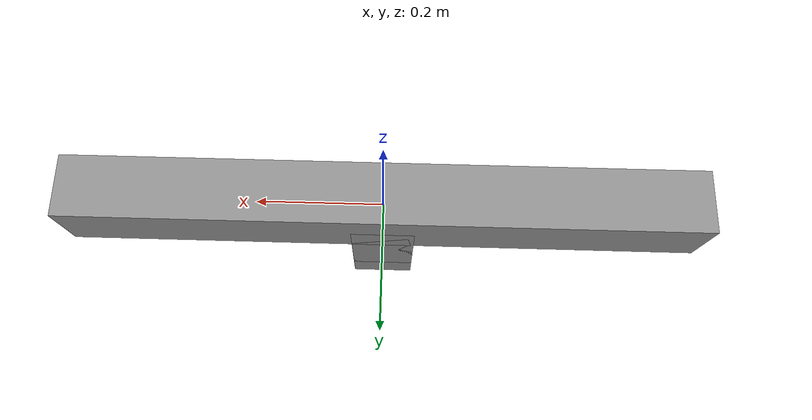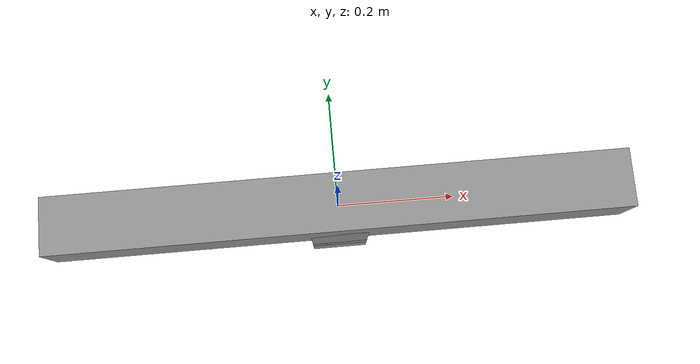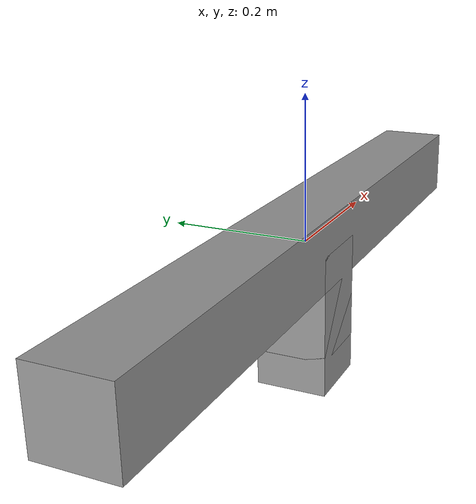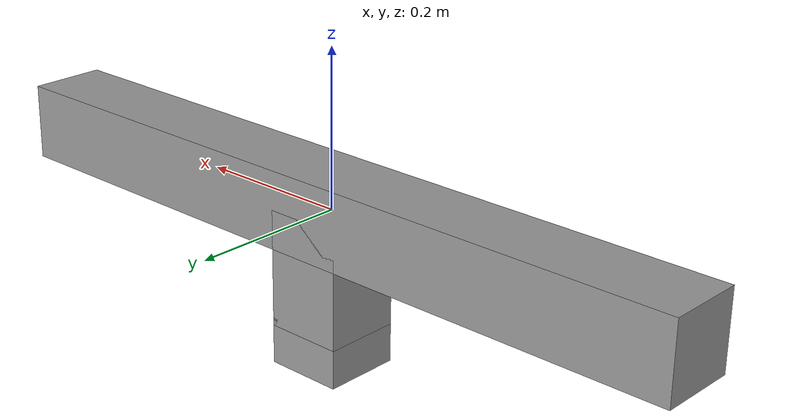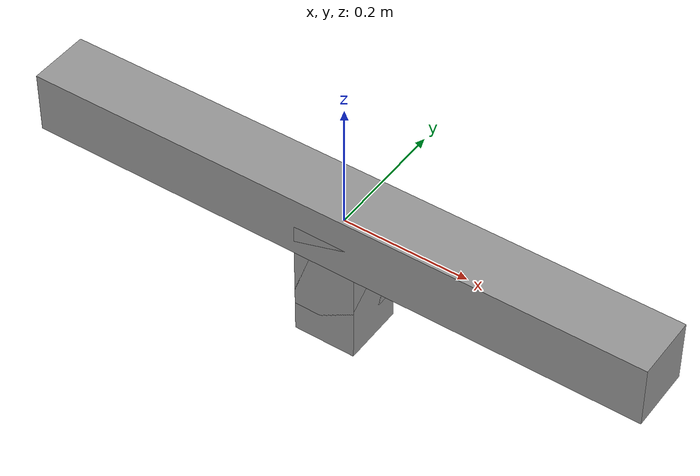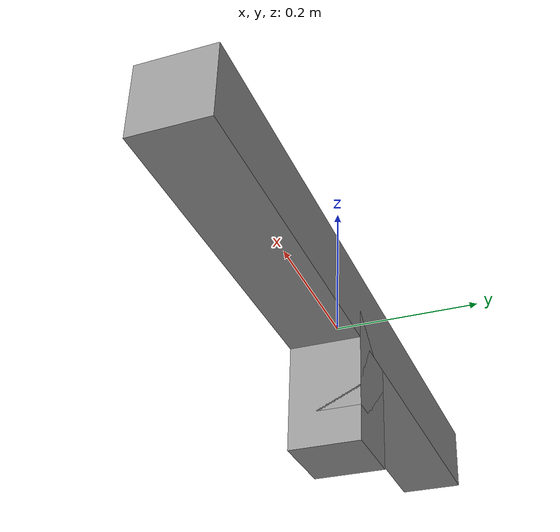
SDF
<?xml version='1.0'?>
<sdf version='1.6'>
  <model name='guide'>
    <link name='base_link'>
      <inertial>
        <mass>1</mass>
        <inertia>
          <ixx>0.166667</ixx>
          <ixy>0</ixy>
          <ixz>0</ixz>
          <iyy>0.166667</iyy>
          <iyz>0</iyz>
          <izz>0.166667</izz>
        </inertia>
        <pose frame=''>0 0 0 0 -0 0</pose>
      </inertial>
      <pose frame=''>0 0 0 0 -0 0</pose>
      <gravity>0</gravity>
      <self_collide>0</self_collide>
      <kinematic>0</kinematic>
      <enable_wind>0</enable_wind>
      <visual name='visual'>
        <pose frame=''>0 0 0 0 -0 0</pose>
        <geometry>
          <box>
            <size>1 0.1 0.1</size>
          </box>
        </geometry>
        <material>
          <lighting>1</lighting>
          <script>
            <uri>file://media/materials/scripts/gazebo.material</uri>
            <name>Gazebo/Grey</name>
          </script>
          <shader type='pixel'>
            <normal_map>__default__</normal_map>
          </shader>
          <ambient>0 0 0 1</ambient>
          <diffuse>0.7 0.7 0.7 1</diffuse>
          <specular>0.01 0.01 0.01 1</specular>
          <emissive>0 0 0 1</emissive>
        </material>
        <transparency>0</transparency>
        <cast_shadows>1</cast_shadows>
      </visual>
    </link>
    <link name='h_link'>
      <inertial>
        <mass>1</mass>
        <inertia>
          <ixx>0.166667</ixx>
          <ixy>0</ixy>
          <ixz>0</ixz>
          <iyy>0.166667</iyy>
          <iyz>0</iyz>
          <izz>0.166667</izz>
        </inertia>
        <pose frame=''>0 0 0 0 -0 0</pose>
      </inertial>
      <pose frame=''>0 0 -0.1 0 -0 0</pose>
      <gravity>0</gravity>
      <self_collide>0</self_collide>
      <kinematic>0</kinematic>
      <enable_wind>0</enable_wind>
      <visual name='visual'>
        <pose frame=''>0 0 0 0 -0 0</pose>
        <geometry>
          <box>
            <size>0.1 0.1 0.1</size>
          </box>
        </geometry>
        <material>
          <lighting>1</lighting>
          <script>
            <uri>file://media/materials/scripts/gazebo.material</uri>
            <name>Gazebo/Grey</name>
          </script>
          <shader type='pixel'>
            <normal_map>__default__</normal_map>
          </shader>
          <ambient>0.3 0.3 0.3 1</ambient>
          <diffuse>0.7 0.7 0.7 1</diffuse>
          <specular>0.01 0.01 0.01 1</specular>
          <emissive>0 0 0 1</emissive>
        </material>
        <transparency>0</transparency>
        <cast_shadows>1</cast_shadows>
      </visual>
    </link>
    <link name='v_link'>
      <inertial>
        <mass>1</mass>
        <inertia>
          <ixx>0.166667</ixx>
          <ixy>0</ixy>
          <ixz>0</ixz>
          <iyy>0.166667</iyy>
          <iyz>0</iyz>
          <izz>0.166667</izz>
        </inertia>
        <pose frame=''>0 0 0 0 -0 0</pose>
      </inertial>
      <pose frame=''>0 0 -0.1 0 -0 0</pose>
      <gravity>0</gravity>
      <self_collide>0</self_collide>
      <kinematic>0</kinematic>
      <enable_wind>0</enable_wind>
      <visual name='visual'>
        <pose frame=''>0 0 0 0 -0 0</pose>
        <geometry>
          <box>
            <size>0.1 0.1 0.2</size>
          </box>
        </geometry>
        <material>
          <lighting>1</lighting>
          <script>
            <uri>file://media/materials/scripts/gazebo.material</uri>
            <name>Gazebo/Grey</name>
          </script>
          <shader type='pixel'>
            <normal_map>__default__</normal_map>
          </shader>
          <ambient>0.3 0.3 0.3 1</ambient>
          <diffuse>0.7 0.7 0.7 1</diffuse>
          <specular>0.01 0.01 0.01 1</specular>
          <emissive>0 0 0 1</emissive>
        </material>
        <transparency>0</transparency>
        <cast_shadows>1</cast_shadows>
      </visual>
    </link>
    <joint name='h_joint' type='prismatic'>
      <parent>base_link</parent>
      <child>h_link</child>
      <pose frame=''>0 0 0 0 -0 0</pose>
      <axis>
        <xyz>1 0 0</xyz>
        <use_parent_model_frame>0</use_parent_model_frame>
        <limit>
          <lower>-1.79769e+308</lower>
          <upper>1.79769e+308</upper>
          <effort>-1</effort>
          <velocity>-1</velocity>
        </limit>
        <dynamics>
          <spring_reference>0</spring_reference>
          <spring_stiffness>0</spring_stiffness>
          <damping>0</damping>
        </dynamics>
      </axis>
      <physics>
        <ode>
          <limit>
            <cfm>0</cfm>
            <erp>0.2</erp>
          </limit>
          <suspension>
            <cfm>0</cfm>
            <erp>0.2</erp>
          </suspension>
        </ode>
      </physics>
    </joint>
    <joint name='v_joint' type='prismatic'>
      <parent>h_link</parent>
      <child>v_link</child>
      <pose frame=''>0 0 0 0 -0 0</pose>
      <axis>
        <xyz>0 0 1</xyz>
        <use_parent_model_frame>0</use_parent_model_frame>
        <limit>
          <lower>-1.79769e+308</lower>
          <upper>1.79769e+308</upper>
          <effort>-1</effort>
          <velocity>-1</velocity>
        </limit>
        <dynamics>
          <spring_reference>0</spring_reference>
          <spring_stiffness>0</spring_stiffness>
          <damping>0</damping>
        </dynamics>
      </axis>
      <physics>
        <ode>
          <limit>
            <cfm>0</cfm>
            <erp>0.2</erp>
          </limit>
          <suspension>
            <cfm>0</cfm>
            <erp>0.2</erp>
          </suspension>
        </ode>
      </physics>
    </joint>
    <static>0</static>
    <allow_auto_disable>1</allow_auto_disable>
  </model>
</sdf>
